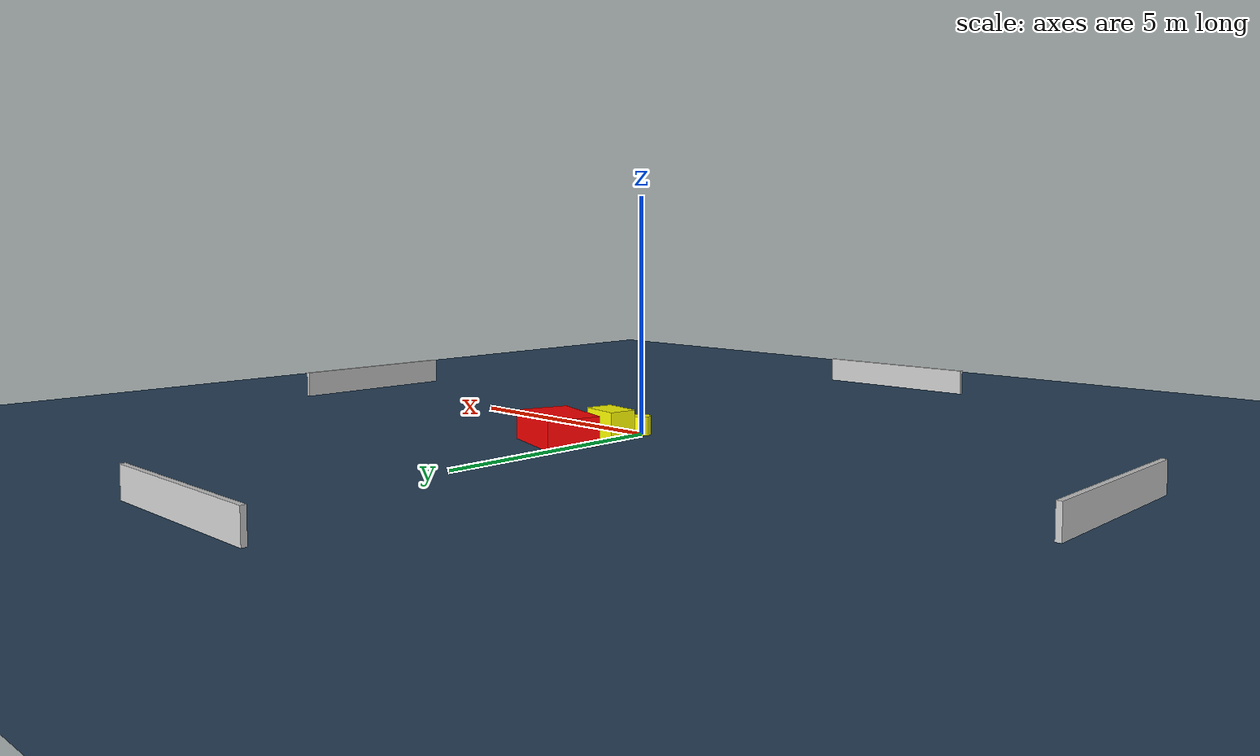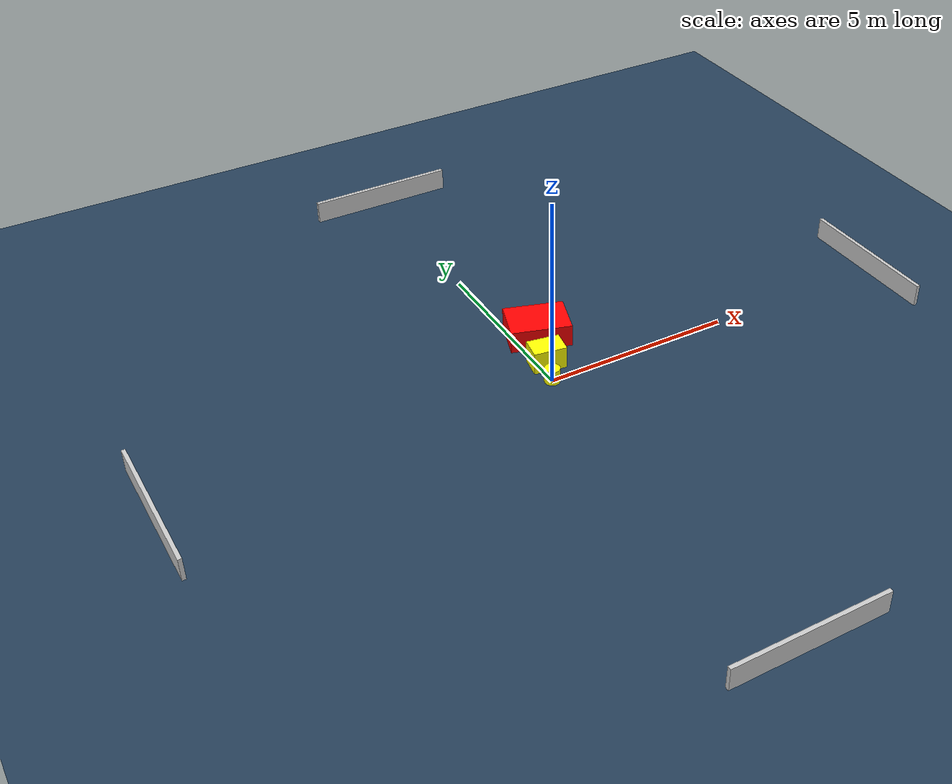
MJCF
<?xml version="1.0" ?>
<mujoco model="generated_environment">
  <option timestep="0.01" integrator="RK4" cone="elliptic"/>
  <default>
    <geom density="1"/>
  </default>
  <asset>
    <texture builtin="gradient" height="3072" name="skybox" rgb1="0.3 0.5 0.7" rgb2="0 0 0" type="skybox" width="512"/>
    <texture builtin="checker" height="300" name="groundplane" rgb1="0.2 0.3 0.4" rgb2="0.1 0.2 0.3" type="2d" width="300"/>
    <material name="groundplane" reflectance="0.2" texrepeat="5 5" texture="groundplane"/>
  </asset>
  <worldbody>
    <light dir="0 0 -1" directional="true" pos="0 0 1.5"/>
    <geom condim="3" friction="0.5 0.005 0.001" material="groundplane" name="floor" pos="0 0 0" size="0 0 0.05" type="plane"/>
    <body name="walls">
      <geom name="wall_1" condim="4" pos="-10.0 0.0 0.3" rgba="0.800000011920929 0.800000011920929 0.800000011920929 1.0" size="0.05 2.0 0.3" type="box"/>
      <geom name="wall_2" condim="4" pos="10.0 0.0 0.3" rgba="0.800000011920929 0.800000011920929 0.800000011920929 1.0" size="0.05 2.0 0.3" type="box"/>
      <geom name="wall_3" condim="4" pos="0.0 -10.0 0.3" rgba="0.800000011920929 0.800000011920929 0.800000011920929 1.0" size="2.0 0.05 0.3" type="box"/>
      <geom name="wall_4" condim="4" pos="0.0 10.0 0.3" rgba="0.800000011920929 0.800000011920929 0.800000011920929 1.0" size="2.0 0.05 0.3" type="box"/>
    </body>
    <body name="robot">
      <joint name="joint_x" type="slide" pos="0 0 0" axis="1 0 0"/>
      <joint name="joint_y" type="slide" pos="0 0 0" axis="0 1 0"/>
      <geom name="robot" type="cylinder" pos="0.0 0.0 0.2" size="0.2 0.2 0.0" mass="5.0" friction="1.0 0.005 0.0001" condim="4" rgba="1.0 1.0 0.0 1.0"/>
    </body>
    <body name="obstacle_1_movable">
      <geom name="obstacle_1_movable" condim="4" pos="0.22995754425402828 0.6723380657486537 0.3" euler="0 0 170.68125692898718" friction="0.0 0.005 0.001" rgba="1.0 1.0 0.0 1.0" size="0.43299065730914876 0.2994009989656302 0.3" type="box" mass="0.1"/>
      <joint type="free"/>
    </body>
    <body name="obstacle_2_static">
      <geom name="obstacle_2_static" condim="4" pos="0.6195573858730502 1.8245768067274224 0.3" euler="0 0 252.08481475782153" friction="0.0 0.005 0.001" rgba="1.0 0.0 0.0 1.0" size="0.5708073774487774 0.7943091629351093 0.3" type="box"/>
    </body>
  </worldbody>
  <actuator>
    <motor name="actuator_x" joint="joint_x" gear="1" ctrlrange="-1 1"/>
    <motor name="actuator_y" joint="joint_y" gear="1" ctrlrange="-1 1"/>
  </actuator>
</mujoco>
